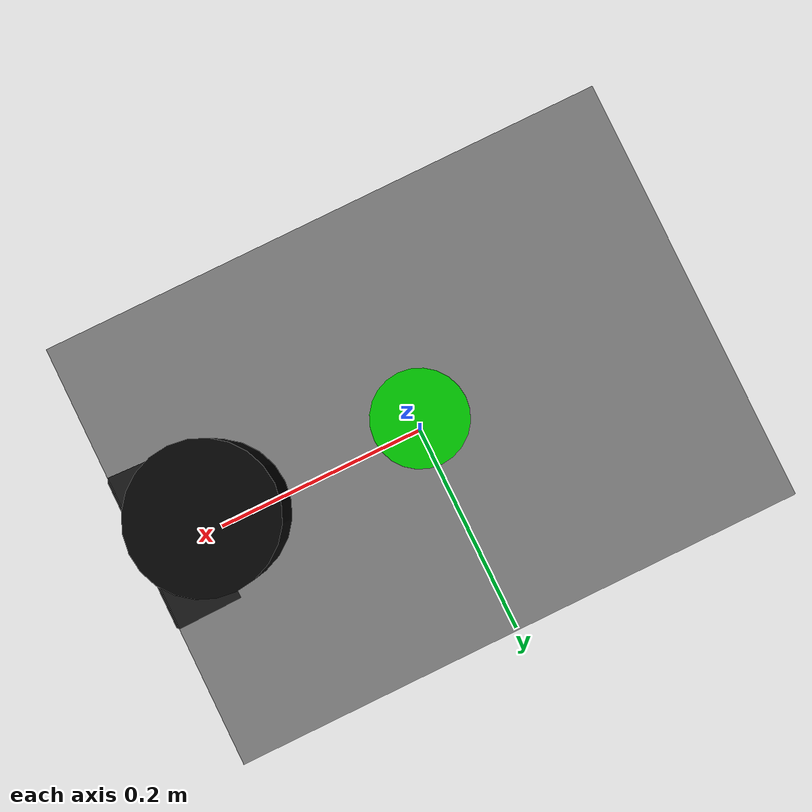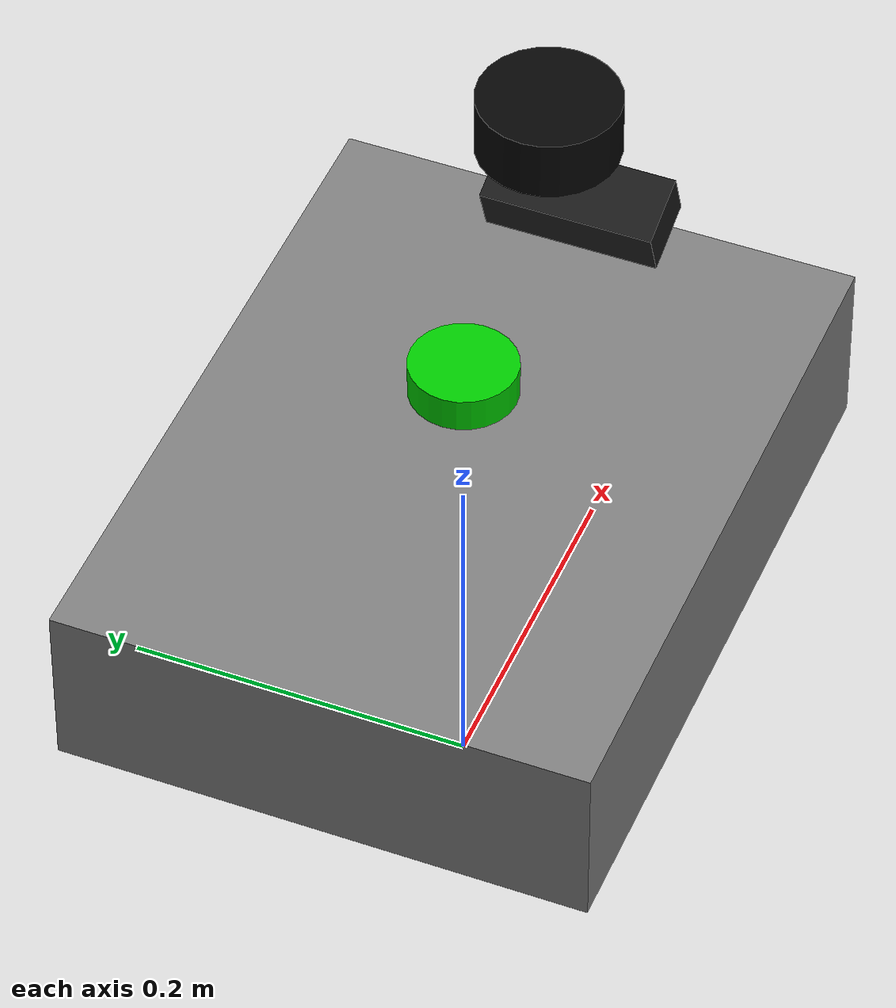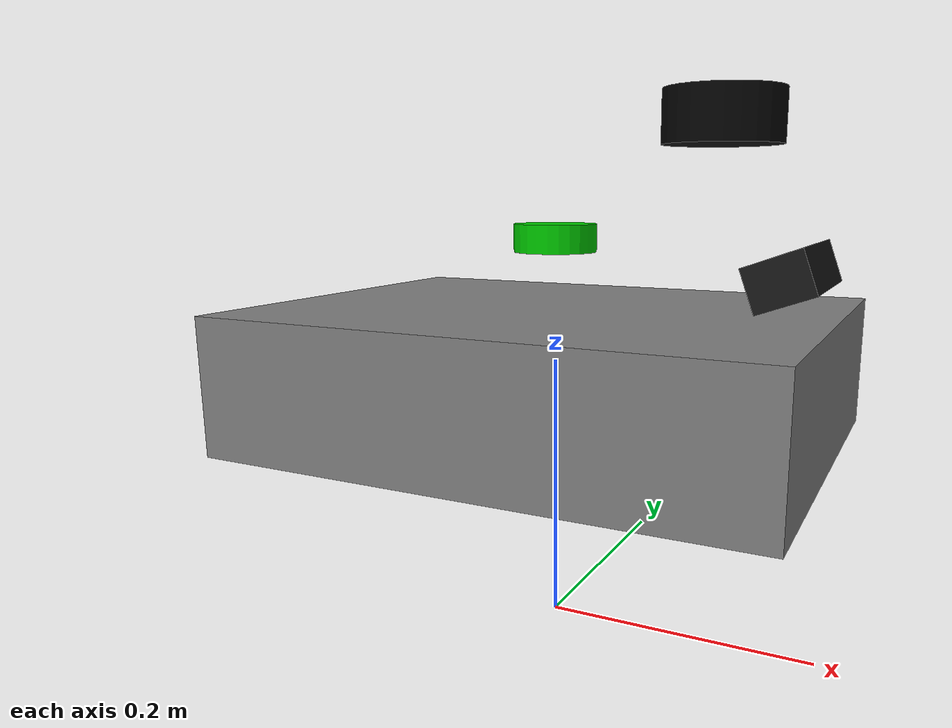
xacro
<?xml version="1.0"?>
<robot name="negative_obstacle_robot" xmlns:xacro="http://www.ros.org/wiki/xacro">

  <!-- Robot parametreleri -->
  <xacro:property name="base_length" value="0.40"/>
  <xacro:property name="base_width"  value="0.30"/>
  <xacro:property name="base_height" value="0.10"/>
  <xacro:property name="wheel_radius" value="0.19"/>
  <xacro:property name="camera_height" value="0.45"/>
  <xacro:property name="camera_pitch_deg" value="-20.0"/>
  <xacro:property name="lidar_height" value="0.18"/>

  <!-- Base link -->
  <link name="base_footprint"/>

  <joint name="base_joint" type="fixed">
    <parent link="base_footprint"/>
    <child  link="base_link"/>
    <origin xyz="0 0 ${wheel_radius}" rpy="0 0 0"/>
  </joint>

  <link name="base_link">
    <visual>
      <geometry>
        <box size="${base_length} ${base_width} ${base_height}"/>
      </geometry>
      <material name="gray">
        <color rgba="0.5 0.5 0.5 1.0"/>
      </material>
    </visual>
    <collision>
      <geometry>
        <box size="${base_length} ${base_width} ${base_height}"/>
      </geometry>
    </collision>
    <inertial>
      <mass value="5.0"/>
      <inertia ixx="0.05" ixy="0" ixz="0" iyy="0.05" iyz="0" izz="0.05"/>
    </inertial>
  </link>

  <!-- Camera mount link -->
  <joint name="camera_joint" type="fixed">
    <parent link="base_link"/>
    <child  link="camera_link"/>
    <origin xyz="${base_length/2 - 0.03} 0 ${base_height/2 + 0.03}"
            rpy="0 ${camera_pitch_deg * 3.14159 / 180.0} 0"/>
  </joint>

  <link name="camera_link">
    <visual>
      <geometry>
        <box size="0.04 0.10 0.03"/>
      </geometry>
      <material name="black">
        <color rgba="0.1 0.1 0.1 1.0"/>
      </material>
    </visual>
  </link>

  <!-- Camera optical frame (ROS convention: z forward, x right, y down) -->
  <joint name="camera_optical_joint" type="fixed">
    <parent link="camera_link"/>
    <child  link="camera_optical_frame"/>
    <origin xyz="0 0 0" rpy="${-3.14159/2} 0 ${-3.14159/2}"/>
  </joint>

  <link name="camera_optical_frame"/>

  <!-- 2D LiDAR link — Slamtec/RPLiDAR, robot üst ön bölge -->
  <joint name="lidar_joint" type="fixed">
    <parent link="base_link"/>
    <child  link="lidar_link"/>
    <origin xyz="0.12 0 ${lidar_height}" rpy="0 0 0"/>
  </joint>

  <link name="lidar_link">
    <visual>
      <geometry>
        <cylinder radius="0.04" length="0.035"/>
      </geometry>
      <material name="dark_gray">
        <color rgba="0.02 0.02 0.02 1.0"/>
      </material>
    </visual>
  </link>

  <!-- IMU link — Witmotion HWT905 (robot gövdesinde, merkeze yakın) -->
  <joint name="imu_joint" type="fixed">
    <parent link="base_link"/>
    <child  link="imu_link"/>
    <origin xyz="0 0 0" rpy="0 0 0"/>
  </joint>

  <link name="imu_link">
    <visual>
      <geometry>
        <box size="0.03 0.03 0.01"/>
      </geometry>
      <material name="blue">
        <color rgba="0.0 0.0 0.8 1.0"/>
      </material>
    </visual>
  </link>

  <!-- GPS link — NMEA anten (robot üstünde, merkeze yakın) -->
  <joint name="gps_joint" type="fixed">
    <parent link="base_link"/>
    <child  link="gps_link"/>
    <origin xyz="0 0 ${base_height/2 + 0.05}" rpy="0 0 0"/>
  </joint>

  <link name="gps_link">
    <visual>
      <geometry>
        <cylinder radius="0.03" length="0.02"/>
      </geometry>
      <material name="green">
        <color rgba="0.0 0.8 0.0 1.0"/>
      </material>
    </visual>
  </link>

</robot>
